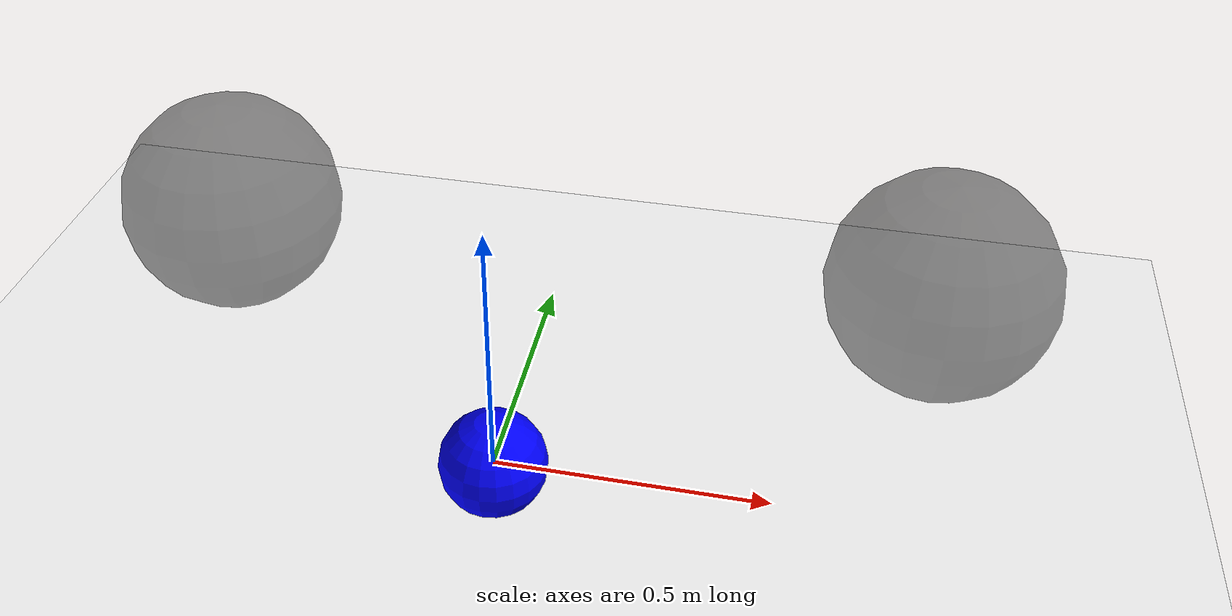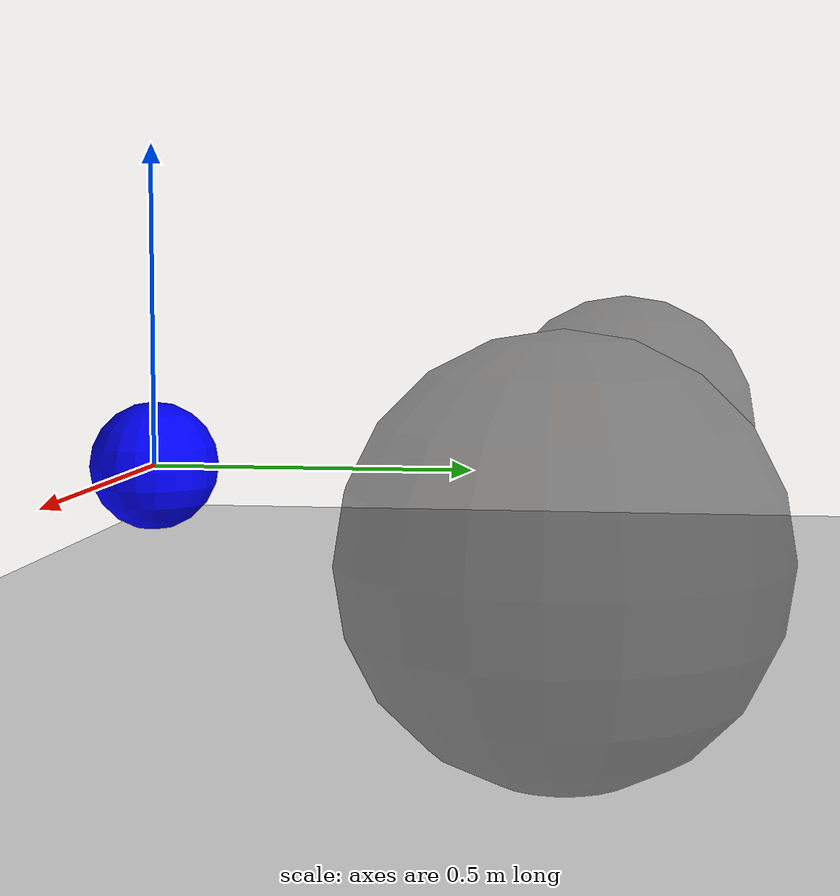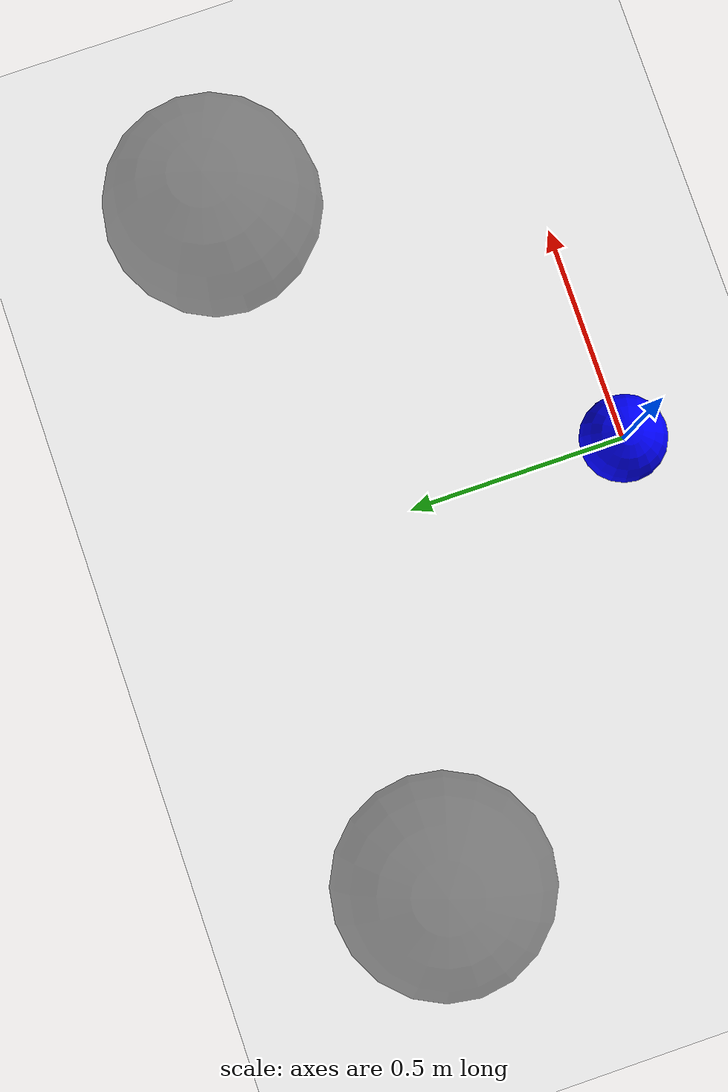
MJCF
<mujoco model="pointmass">
   <compiler inertiafromgeom="true" angle="radian" coordinate="local" />
   <option timestep="0.01" gravity="0 0 0" iterations="100" integrator="Euler" />
   <default>
      <joint armature="0.004" damping="10" limited="true" />
      <geom friction=".5 .1 .1" margin="0.002" condim="1" contype="1" conaffinity="1" rgba="1.0 0.25 0.22 1" />
   </default>
    <visual>
        <headlight ambient="0.4 0.4 0.4"/>
    </visual>

   <worldbody>

      <!-- cameras -->
      <camera name="ebm_custom" pos="0 0 2" quat='1 0 0 0' fovy='60'/>

		<body name="robot" pos="0 0 0">
			<geom name="robot_geom"  type="sphere" rgba="0.6 0.6 0.6 1" pos="0 0 0" size="0.05" />
            <site name="site_pm" type="sphere" rgba="0 0 1 1" pos="0 0 0" size="0.1" />

			<joint name="robot_joint_x" type="slide" pos="0 0 0" axis="1 0 0" range="-1 1" />
			<joint name="robot_joint_y" type="slide" pos="0 0 0" axis="0 1 0" range="-1 1" />
		</body>

		<geom type="plane" rgba="1 1 1 1" pos="0. 0. -0.25" size="0 0 0.01" />
		<site name="target1" type="sphere" rgba="0.1 0.1 0.1 0.5" pos="-0.8 0.7 0" size="0.25" />
		<site name="target2" type="sphere" rgba="0.1 0.1 0.1 0.5" pos="0.8 0.7 0" size="0.25" />
    </worldbody>

   <actuator>

      <position name="actuator_x" joint="robot_joint_x" ctrlrange="-1   1" kp="100"/>
      <position name="actuator_y" joint="robot_joint_y" ctrlrange="-1   1" kp="100"/>

   </actuator>
</mujoco>
